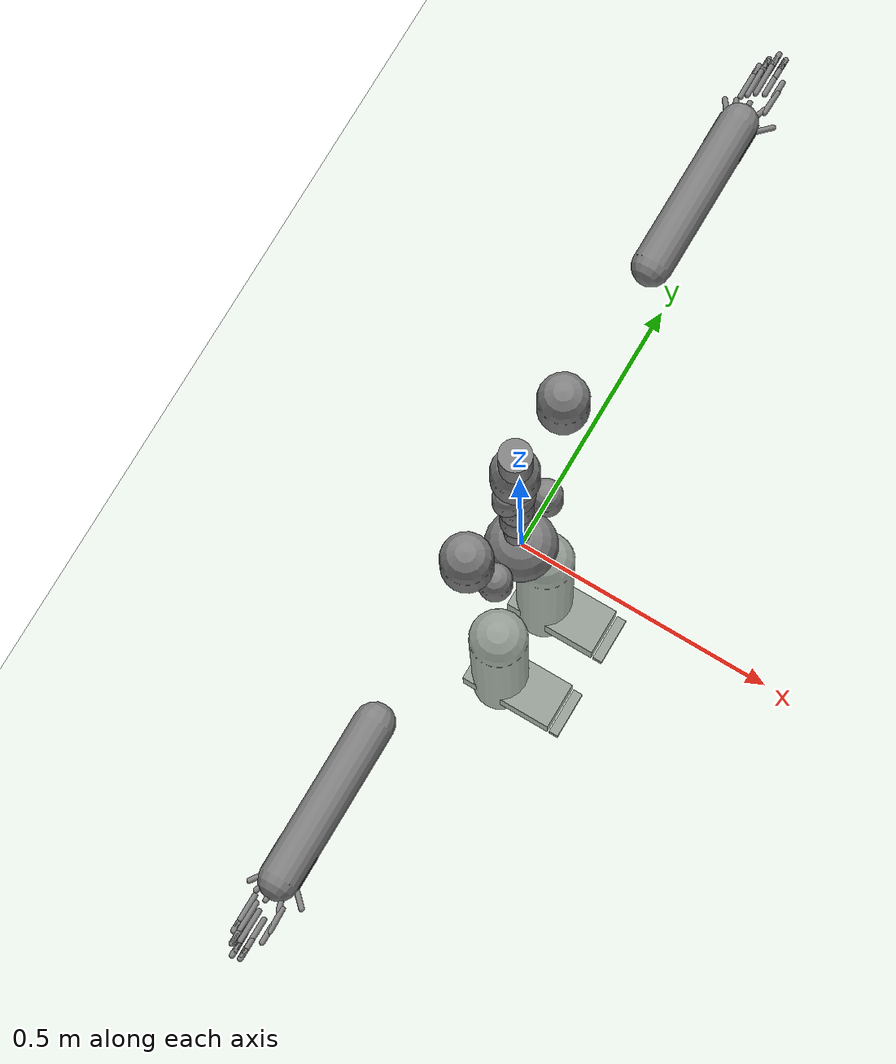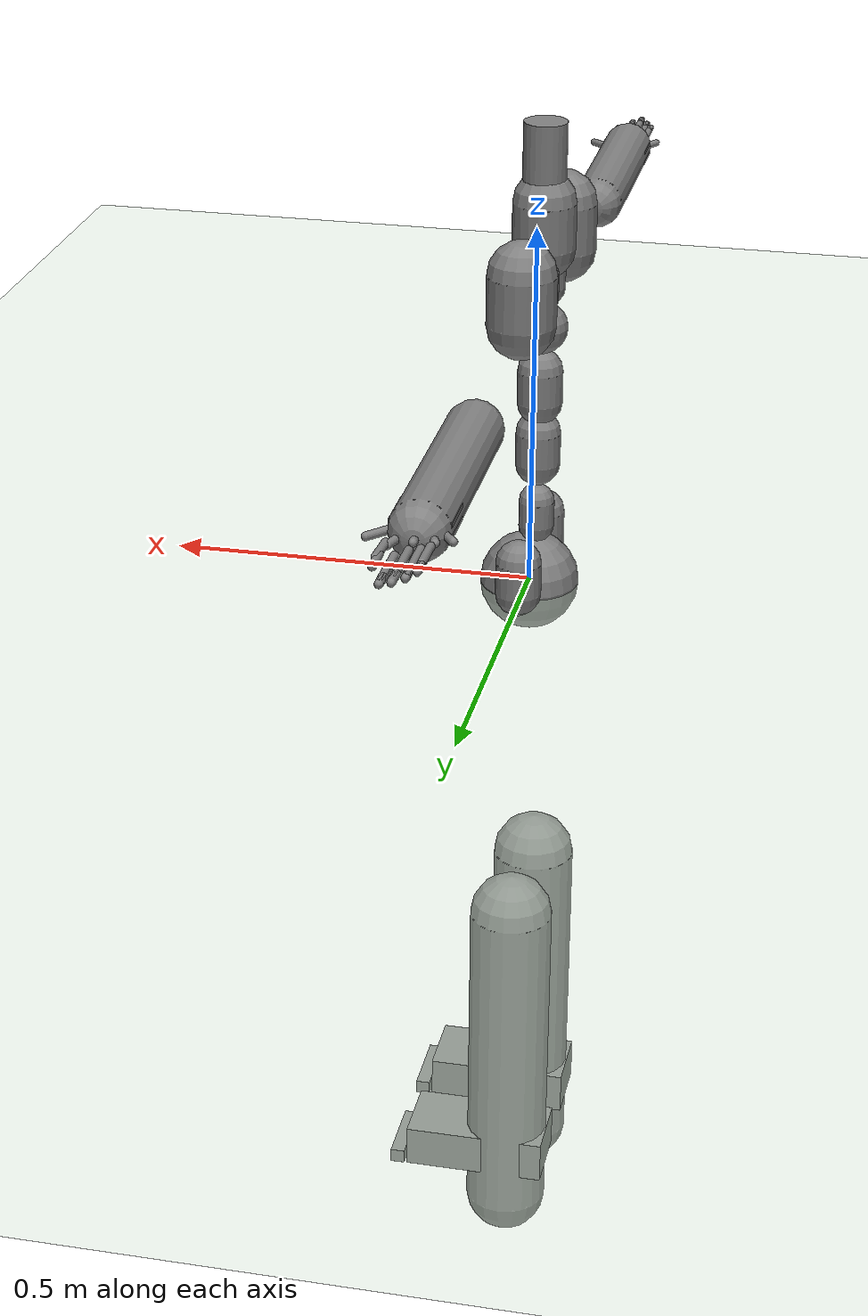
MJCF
<?xml version="1.0" ?>
<mujoco model="humanoid">
  <compiler coordinate="local"/>
  <statistic extent="2" center="0 0 1"/>
  <option timestep="0.00555"/>
  <default>
    <motor ctrlrange="-1 1" ctrllimited="true"/>
    <geom type="capsule" condim="1" friction="1.0 0.05 0.05" solimp=".9 .99 .003" solref=".015 1"/>
    <joint type="hinge" damping="0.1" stiffness="5" armature=".007" limited="true" solimplimit="0 .99 .01"/>
    <site size=".04" group="3"/>
  </default>
  <asset>
    <texture type="skybox" builtin="gradient" rgb1=".4 .5 .6" rgb2="0 0 0" width="100" height="100"/>
    <texture builtin="flat" height="1278" mark="cross" markrgb="1 1 1" name="texgeom" random="0.01" rgb1="0.8 0.6 0.4" rgb2="0.8 0.6 0.4" type="cube" width="127"/>
    <texture builtin="checker" height="100" name="texplane" rgb1="0 0 0" rgb2="0.8 0.8 0.8" type="2d" width="100"/>
    <material name="MatPlane" reflectance="0.5" shininess="1" specular="1" texrepeat="60 60" texture="texplane"/>
    <material name="geom" texture="texgeom" texuniform="true"/>
  </asset>
  <worldbody>
    <light cutoff="100" diffuse="1 1 1" dir="-0 0 -1.3" directional="true" exponent="1" pos="0 0 1.3" specular=".1 .1 .1"/>
    <geom conaffinity="1" condim="3" name="floor" pos="0 0 0" rgba="0.8 0.9 0.8 1" size="100 100 .2" type="plane" material="MatPlane"/>
    <body name="pHipOrigin" pos="0 0 0">
      <freejoint name="pHipOrigin"/>
      <geom type="sphere" contype="1" conaffinity="1" density="4629.6296296296305" size="0.06759" pos="0.0000 0.0000 -0.0000"/>
      <body name="jL5S1" pos="-0.00761586 0 0.06854256">
        <geom type="capsule" contype="1" conaffinity="1" density="1000" fromto="0 0 0.01379 0 0 0.04828" size="0.02414"/>
        <joint name="jL5S1_x" type="hinge" pos="0 0 0" axis="1 0 0" stiffness="500" damping="500" armature="0.02" range="-180.0000 180.0000"/>
        <joint name="jL5S1_y" type="hinge" pos="0 0 0" axis="0 1 0" stiffness="500" damping="500" armature="0.02" range="-180.0000 180.0000"/>
        <joint name="jL5S1_z" type="hinge" pos="0 0 0" axis="0 0 1" stiffness="500" damping="500" armature="0.02" range="-180.0000 180.0000"/>
        <body name="jL4L3" pos="0 0 0.08697770">
          <geom type="capsule" contype="1" conaffinity="1" density="1000" fromto="0 0 0.01740 0 0 0.06088" size="0.03044"/>
          <joint name="jL4L3_x" type="hinge" pos="0 0 0" axis="1 0 0" stiffness="500" damping="500" armature="0.02" range="-180.0000 180.0000"/>
          <joint name="jL4L3_y" type="hinge" pos="0 0 0" axis="0 1 0" stiffness="500" damping="500" armature="0.02" range="-180.0000 180.0000"/>
          <joint name="jL4L3_z" type="hinge" pos="0 0 0" axis="0 0 1" stiffness="500" damping="500" armature="0.02" range="-180.0000 180.0000"/>
          <body name="jL1T12" pos="-0.00067320 0 0.08725898">
            <geom type="capsule" contype="1" conaffinity="1" density="1000" fromto="0 0 0.01745 0 0 0.06108" size="0.03054"/>
            <joint name="jL1T12_x" type="hinge" pos="0 0 0" axis="1 0 0" stiffness="500" damping="500" armature="0.02" range="-180.0000 180.0000"/>
            <joint name="jL1T12_y" type="hinge" pos="0 0 0" axis="0 1 0" stiffness="500" damping="500" armature="0.02" range="-180.0000 180.0000"/>
            <joint name="jL1T12_z" type="hinge" pos="0 0 0" axis="0 0 1" stiffness="500" damping="500" armature="0.02" range="-180.0000 180.0000"/>
            <body name="jT9T8" pos="-0.00067448 0 0.08725406">
              <geom type="sphere" contype="1" conaffinity="1" density="1000" size="0.03490" pos="0.000 0.0000 0.034903"/>
              <joint name="jT9T8_x" type="hinge" pos="0 0 0" axis="1 0 0" stiffness="500" damping="500" armature="0.02" range="-180.0000 180.0000"/>
              <joint name="jT9T8_y" type="hinge" pos="0 0 0" axis="0 1 0" stiffness="500" damping="500" armature="0.02" range="-180.0000 180.0000"/>
              <joint name="jT9T8_z" type="hinge" pos="0 0 0" axis="0 0 1" stiffness="500" damping="500" armature="0.02" range="-180.0000 180.0000"/>
              <body name="jT1C7" pos="0 0 0.12036100">
                <geom type="capsule" contype="1" conaffinity="1" density="1000" fromto="0 0 0.02407 0 0 0.08425" size="0.04213"/>
                <joint name="jT1C7_x" type="hinge" pos="0 0 0" axis="1 0 0" stiffness="500" damping="500" armature="0.02" range="-180.0000 180.0000"/>
                <joint name="jT1C7_y" type="hinge" pos="0 0 0" axis="0 1 0" stiffness="500" damping="500" armature="0.02" range="-180.0000 180.0000"/>
                <joint name="jT1C7_z" type="hinge" pos="0 0 0" axis="0 0 1" stiffness="500" damping="500" armature="0.02" range="-180.0000 180.0000"/>
                <body name="jC1Head" pos="0.00112424 0 0.09529421">
                  <geom type="cylinder" contype="1" conaffinity="1" density="1000" fromto="0 0 0 0 0 0.09530" size="0.02859"/>
                  <joint name="jC1Head_x" type="hinge" pos="0 0 0" axis="1 0 0" stiffness="500" damping="500" armature="0.02" range="-180.0000 180.0000"/>
                  <joint name="jC1Head_y" type="hinge" pos="0 0 0" axis="0 1 0" stiffness="500" damping="500" armature="0.02" range="-180.0000 180.0000"/>
                  <joint name="jC1Head_z" type="hinge" pos="0 0 0" axis="0 0 1" stiffness="500" damping="500" armature="0.02" range="-180.0000 180.0000"/>
                </body>
              </body>
              <body name="jRightT4Shoulder" pos="0 -0.02751327 0.06708339">
                <geom type="capsule" contype="1" conaffinity="1" density="1000" fromto="0 0 0.01450 0 0 0.05075" size="0.02538"/>
                <joint name="jRightT4Shoulder_x" type="hinge" pos="0 0 0" axis="1 0 0" stiffness="500" damping="500" armature="0.02" range="-180.0000 180.0000"/>
                <joint name="jRightT4Shoulder_y" type="hinge" pos="0 0 0" axis="0 1 0" stiffness="500" damping="500" armature="0.02" range="-180.0000 180.0000"/>
                <joint name="jRightT4Shoulder_z" type="hinge" pos="0 0 0" axis="0 0 1" stiffness="500" damping="500" armature="0.02" range="-180.0000 180.0000"/>
                <body name="jRightShoulder" pos="0 -0.12883951 0">
                  <geom type="capsule" contype="1" conaffinity="1" density="1000" fromto="0 0 0.02577 0 0 0.09019" size="0.04509"/>
                  <joint name="jRightShoulder_x" type="hinge" pos="0 0 0" axis="1 0 0" stiffness="500" damping="500" armature="0.02" range="-180.0000 180.0000"/>
                  <joint name="jRightShoulder_y" type="hinge" pos="0 0 0" axis="0 1 0" stiffness="500" damping="500" armature="0.02" range="-180.0000 180.0000"/>
                  <joint name="jRightShoulder_z" type="hinge" pos="0 0 0" axis="0 0 1" stiffness="500" damping="500" armature="0.02" range="-180.0000 180.0000"/>
                  <body name="jRightElbow" pos="0 -0.29751137 0">
                    <geom type="capsule" contype="1" conaffinity="1" density="1000" fromto="0 0 0 0.00000000 -0.29751137 0.00000000" size="0.03570"/>
                    <joint name="jRightElbow_x" type="hinge" pos="0 0 0" axis="1 0 0" stiffness="500" damping="500" armature="0.02" range="-180.0000 180.0000"/>
                    <joint name="jRightElbow_y" type="hinge" pos="0 0 0" axis="0 1 0" stiffness="500" damping="500" armature="0.02" range="-180.0000 180.0000"/>
                    <joint name="jRightElbow_z" type="hinge" pos="0 0 0" axis="0 0 1" stiffness="500" damping="500" armature="0.02" range="-180.0000 180.0000"/>
                    <body name="jRightWrist" pos="0.00010711 -0.26612908 0">
                      <geom density="1000" type="box" pos="0 0 0" size="0.035 0.03 0.01" quat="1.0000 0.0000 0.0000 0.0000"/>
                      <joint name="jRightWrist_x" type="hinge" pos="0 0 0" axis="1 0 0" stiffness="500" damping="500" armature="0.02" range="-180.0000 180.0000"/>
                      <joint name="jRightWrist_y" type="hinge" pos="0 0 0" axis="0 1 0" stiffness="500" damping="500" armature="0.02" range="-180.0000 180.0000"/>
                      <joint name="jRightWrist_z" type="hinge" pos="0 0 0" axis="0 0 1" stiffness="500" damping="500" armature="0.02" range="-180.0000 180.0000"/>
                      <body name="jRightFirstCMC" pos="0.02770144 -0.02655338 -0.00125449">
                        <geom type="capsule" contype="1" conaffinity="1" density="1000" fromto="0 0 0 0.02770144 -0.02655338 -0.00125449" size="0.005"/>
                        <joint name="jRightFirstCMC_x" type="hinge" pos="0 0 0" axis="1 0 0" stiffness="500" damping="500" armature="0.02" range="-180.0000 180.0000"/>
                        <joint name="jRightFirstCMC_y" type="hinge" pos="0 0 0" axis="0 1 0" stiffness="500" damping="500" armature="0.02" range="-180.0000 180.0000"/>
                        <joint name="jRightFirstCMC_z" type="hinge" pos="0 0 0" axis="0 0 1" stiffness="500" damping="500" armature="0.02" range="-180.0000 180.0000"/>
                        <body name="jRightFirstMCP" pos="0.00149985 -0.04232468 0.00089432">
                          <geom type="capsule" contype="1" conaffinity="1" density="1000" fromto="0 0 0 0.00149985 -0.04232468 0.00089432" size="0.005"/>
                          <joint name="jRightFirstMCP_x" type="hinge" pos="0 0 0" axis="1 0 0" stiffness="500" damping="500" armature="0.02" range="-180.0000 180.0000"/>
                          <joint name="jRightFirstMCP_y" type="hinge" pos="0 0 0" axis="0 1 0" stiffness="500" damping="500" armature="0.02" range="-180.0000 180.0000"/>
                          <joint name="jRightFirstMCP_z" type="hinge" pos="0 0 0" axis="0 0 1" stiffness="500" damping="500" armature="0.02" range="-180.0000 180.0000"/>
                          <body name="jRightIP" pos="0 -0.03137622 0">
                            <geom type="capsule" contype="1" conaffinity="1" density="1000" fromto="0 0 0 0.00000000 -0.03137622 0.00000000" size="0.005"/>
                            <joint name="jRightIP_x" type="hinge" pos="0 0 0" axis="1 0 0" stiffness="500" damping="500" armature="0.02" range="-180.0000 180.0000"/>
                            <joint name="jRightIP_y" type="hinge" pos="0 0 0" axis="0 1 0" stiffness="500" damping="500" armature="0.02" range="-180.0000 180.0000"/>
                            <joint name="jRightIP_z" type="hinge" pos="0 0 0" axis="0 0 1" stiffness="500" damping="500" armature="0.02" range="-180.0000 180.0000"/>
                          </body>
                        </body>
                      </body>
                      <body name="jRightSecondCMC" pos="0.01270858 -0.03713045 -0.00064765">
                        <geom type="capsule" contype="1" conaffinity="1" density="1000" fromto="0 0 0 0.01270858 -0.03713045 -0.00064765" size="0.005"/>
                        <joint name="jRightSecondCMC_x" type="hinge" pos="0 0 0" axis="1 0 0" stiffness="500" damping="500" armature="0.02" range="-180.0000 180.0000"/>
                        <joint name="jRightSecondCMC_y" type="hinge" pos="0 0 0" axis="0 1 0" stiffness="500" damping="500" armature="0.02" range="-180.0000 180.0000"/>
                        <joint name="jRightSecondCMC_z" type="hinge" pos="0 0 0" axis="0 0 1" stiffness="500" damping="500" armature="0.02" range="-180.0000 180.0000"/>
                        <body name="jRightSecondMCP" pos="-0.00038842 -0.06194937 -0.00064262">
                          <geom type="capsule" contype="1" conaffinity="1" density="1000" fromto="0 0 0 -0.00038842 -0.06194937 -0.00064262" size="0.005"/>
                          <joint name="jRightSecondMCP_x" type="hinge" pos="0 0 0" axis="1 0 0" stiffness="500" damping="500" armature="0.02" range="-180.0000 180.0000"/>
                          <joint name="jRightSecondMCP_y" type="hinge" pos="0 0 0" axis="0 1 0" stiffness="500" damping="500" armature="0.02" range="-180.0000 180.0000"/>
                          <joint name="jRightSecondMCP_z" type="hinge" pos="0 0 0" axis="0 0 1" stiffness="500" damping="500" armature="0.02" range="-180.0000 180.0000"/>
                          <body name="jRightSecondPIP" pos="0 -0.03626630 0">
                            <geom type="capsule" contype="1" conaffinity="1" density="1000" fromto="0 0 0 0.00000000 -0.03626630 0.00000000" size="0.005"/>
                            <joint name="jRightSecondPIP_x" type="hinge" pos="0 0 0" axis="1 0 0" stiffness="500" damping="500" armature="0.02" range="-180.0000 180.0000"/>
                            <joint name="jRightSecondPIP_y" type="hinge" pos="0 0 0" axis="0 1 0" stiffness="500" damping="500" armature="0.02" range="-180.0000 180.0000"/>
                            <joint name="jRightSecondPIP_z" type="hinge" pos="0 0 0" axis="0 0 1" stiffness="500" damping="500" armature="0.02" range="-180.0000 180.0000"/>
                            <body name="jRightSecondDIP" pos="0 -0.01733303 0">
                              <geom type="capsule" contype="1" conaffinity="1" density="1000" fromto="0 0 0 0.00000000 -0.01733303 0.00000000" size="0.005"/>
                              <joint name="jRightSecondDIP_x" type="hinge" pos="0 0 0" axis="1 0 0" stiffness="500" damping="500" armature="0.02" range="-180.0000 180.0000"/>
                              <joint name="jRightSecondDIP_y" type="hinge" pos="0 0 0" axis="0 1 0" stiffness="500" damping="500" armature="0.02" range="-180.0000 180.0000"/>
                              <joint name="jRightSecondDIP_z" type="hinge" pos="0 0 0" axis="0 0 1" stiffness="500" damping="500" armature="0.02" range="-180.0000 180.0000"/>
                            </body>
                          </body>
                        </body>
                      </body>
                      <body name="jRightThirdCMC" pos="-0.00065555 -0.03545052 0.00149039">
                        <geom type="capsule" contype="1" conaffinity="1" density="1000" fromto="0 0 0 -0.00065555 -0.03545052 0.00149039" size="0.005"/>
                        <joint name="jRightThirdCMC_x" type="hinge" pos="0 0 0" axis="1 0 0" stiffness="500" damping="500" armature="0.02" range="-180.0000 180.0000"/>
                        <joint name="jRightThirdCMC_y" type="hinge" pos="0 0 0" axis="0 1 0" stiffness="500" damping="500" armature="0.02" range="-180.0000 180.0000"/>
                        <joint name="jRightThirdCMC_z" type="hinge" pos="0 0 0" axis="0 0 1" stiffness="500" damping="500" armature="0.02" range="-180.0000 180.0000"/>
                        <body name="jRightThirdMCP" pos="-0.00067545 -0.05596149 0.00152250">
                          <geom type="capsule" contype="1" conaffinity="1" density="1000" fromto="0 0 0 -0.00067545 -0.05596149 0.00152250" size="0.005"/>
                          <joint name="jRightThirdMCP_x" type="hinge" pos="0 0 0" axis="1 0 0" stiffness="500" damping="500" armature="0.02" range="-180.0000 180.0000"/>
                          <joint name="jRightThirdMCP_y" type="hinge" pos="0 0 0" axis="0 1 0" stiffness="500" damping="500" armature="0.02" range="-180.0000 180.0000"/>
                          <joint name="jRightThirdMCP_z" type="hinge" pos="0 0 0" axis="0 0 1" stiffness="500" damping="500" armature="0.02" range="-180.0000 180.0000"/>
                          <body name="jRightThirdPIP" pos="0 -0.04126192 0">
                            <geom type="capsule" contype="1" conaffinity="1" density="1000" fromto="0 0 0 0.00000000 -0.04126192 0.00000000" size="0.005"/>
                            <joint name="jRightThirdPIP_x" type="hinge" pos="0 0 0" axis="1 0 0" stiffness="500" damping="500" armature="0.02" range="-180.0000 180.0000"/>
                            <joint name="jRightThirdPIP_y" type="hinge" pos="0 0 0" axis="0 1 0" stiffness="500" damping="500" armature="0.02" range="-180.0000 180.0000"/>
                            <joint name="jRightThirdPIP_z" type="hinge" pos="0 0 0" axis="0 0 1" stiffness="500" damping="500" armature="0.02" range="-180.0000 180.0000"/>
                            <body name="jRightThirdDIP" pos="0 -0.01737270 0">
                              <geom type="capsule" contype="1" conaffinity="1" density="1000" fromto="0 0 0 0.00000000 -0.01737270 0.00000000" size="0.005"/>
                              <joint name="jRightThirdDIP_x" type="hinge" pos="0 0 0" axis="1 0 0" stiffness="500" damping="500" armature="0.02" range="-180.0000 180.0000"/>
                              <joint name="jRightThirdDIP_y" type="hinge" pos="0 0 0" axis="0 1 0" stiffness="500" damping="500" armature="0.02" range="-180.0000 180.0000"/>
                              <joint name="jRightThirdDIP_z" type="hinge" pos="0 0 0" axis="0 0 1" stiffness="500" damping="500" armature="0.02" range="-180.0000 180.0000"/>
                            </body>
                          </body>
                        </body>
                      </body>
                      <body name="jRightFourthCMC" pos="-0.01168022 -0.03253136 0.00076574">
                        <geom type="capsule" contype="1" conaffinity="1" density="1000" fromto="0 0 0 -0.01168022 -0.03253136 0.00076574" size="0.005"/>
                        <joint name="jRightFourthCMC_x" type="hinge" pos="0 0 0" axis="1 0 0" stiffness="500" damping="500" armature="0.02" range="-180.0000 180.0000"/>
                        <joint name="jRightFourthCMC_y" type="hinge" pos="0 0 0" axis="0 1 0" stiffness="500" damping="500" armature="0.02" range="-180.0000 180.0000"/>
                        <joint name="jRightFourthCMC_z" type="hinge" pos="0 0 0" axis="0 0 1" stiffness="500" damping="500" armature="0.02" range="-180.0000 180.0000"/>
                        <body name="jRightFourthMCP" pos="-0.00036386 -0.04986992 0.00078350">
                          <geom type="capsule" contype="1" conaffinity="1" density="1000" fromto="0 0 0 -0.00036386 -0.04986992 0.00078350" size="0.005"/>
                          <joint name="jRightFourthMCP_x" type="hinge" pos="0 0 0" axis="1 0 0" stiffness="500" damping="500" armature="0.02" range="-180.0000 180.0000"/>
                          <joint name="jRightFourthMCP_y" type="hinge" pos="0 0 0" axis="0 1 0" stiffness="500" damping="500" armature="0.02" range="-180.0000 180.0000"/>
                          <joint name="jRightFourthMCP_z" type="hinge" pos="0 0 0" axis="0 0 1" stiffness="500" damping="500" armature="0.02" range="-180.0000 180.0000"/>
                          <body name="jRightFourthPIP" pos="0 -0.03737780 0">
                            <geom type="capsule" contype="1" conaffinity="1" density="1000" fromto="0 0 0 0.00000000 -0.03737780 0.00000000" size="0.005"/>
                            <joint name="jRightFourthPIP_x" type="hinge" pos="0 0 0" axis="1 0 0" stiffness="500" damping="500" armature="0.02" range="-180.0000 180.0000"/>
                            <joint name="jRightFourthPIP_y" type="hinge" pos="0 0 0" axis="0 1 0" stiffness="500" damping="500" armature="0.02" range="-180.0000 180.0000"/>
                            <joint name="jRightFourthPIP_z" type="hinge" pos="0 0 0" axis="0 0 1" stiffness="500" damping="500" armature="0.02" range="-180.0000 180.0000"/>
                            <body name="jRightFourthDIP" pos="0 -0.01896561 0">
                              <geom type="capsule" contype="1" conaffinity="1" density="1000" fromto="0 0 0 0.00000000 -0.01896561 0.00000000" size="0.005"/>
                              <joint name="jRightFourthDIP_x" type="hinge" pos="0 0 0" axis="1 0 0" stiffness="500" damping="500" armature="0.02" range="-180.0000 180.0000"/>
                              <joint name="jRightFourthDIP_y" type="hinge" pos="0 0 0" axis="0 1 0" stiffness="500" damping="500" armature="0.02" range="-180.0000 180.0000"/>
                              <joint name="jRightFourthDIP_z" type="hinge" pos="0 0 0" axis="0 0 1" stiffness="500" damping="500" armature="0.02" range="-180.0000 180.0000"/>
                            </body>
                          </body>
                        </body>
                      </body>
                      <body name="jRightFifthCMC" pos="-0.02038501 -0.02840419 0.00056032">
                        <geom type="capsule" contype="1" conaffinity="1" density="1000" fromto="0 0 0 -0.02038501 -0.02840419 0.00056032" size="0.005"/>
                        <joint name="jRightFifthCMC_x" type="hinge" pos="0 0 0" axis="1 0 0" stiffness="500" damping="500" armature="0.02" range="-180.0000 180.0000"/>
                        <joint name="jRightFifthCMC_y" type="hinge" pos="0 0 0" axis="0 1 0" stiffness="500" damping="500" armature="0.02" range="-180.0000 180.0000"/>
                        <joint name="jRightFifthCMC_z" type="hinge" pos="0 0 0" axis="0 0 1" stiffness="500" damping="500" armature="0.02" range="-180.0000 180.0000"/>
                        <body name="jRightFifthMCP" pos="-0.00000665 -0.04500107 0.00061927">
                          <geom type="capsule" contype="1" conaffinity="1" density="1000" fromto="0 0 0 -0.00000665 -0.04500107 0.00061927" size="0.005"/>
                          <joint name="jRightFifthMCP_x" type="hinge" pos="0 0 0" axis="1 0 0" stiffness="500" damping="500" armature="0.02" range="-180.0000 180.0000"/>
                          <joint name="jRightFifthMCP_y" type="hinge" pos="0 0 0" axis="0 1 0" stiffness="500" damping="500" armature="0.02" range="-180.0000 180.0000"/>
                          <joint name="jRightFifthMCP_z" type="hinge" pos="0 0 0" axis="0 0 1" stiffness="500" damping="500" armature="0.02" range="-180.0000 180.0000"/>
                          <body name="jRightFifthPIP" pos="0 -0.03279999 0">
                            <geom type="capsule" contype="1" conaffinity="1" density="1000" fromto="0 0 0 0.00000000 -0.03279999 0.00000000" size="0.005"/>
                            <joint name="jRightFifthPIP_x" type="hinge" pos="0 0 0" axis="1 0 0" stiffness="500" damping="500" armature="0.02" range="-180.0000 180.0000"/>
                            <joint name="jRightFifthPIP_y" type="hinge" pos="0 0 0" axis="0 1 0" stiffness="500" damping="500" armature="0.02" range="-180.0000 180.0000"/>
                            <joint name="jRightFifthPIP_z" type="hinge" pos="0 0 0" axis="0 0 1" stiffness="500" damping="500" armature="0.02" range="-180.0000 180.0000"/>
                            <body name="jRightFifthDIP" pos="0 -0.01316215 0">
                              <geom type="capsule" contype="1" conaffinity="1" density="1000" fromto="0 0 0 0.00000000 -0.01316215 0.00000000" size="0.005"/>
                              <joint name="jRightFifthDIP_x" type="hinge" pos="0 0 0" axis="1 0 0" stiffness="500" damping="500" armature="0.02" range="-180.0000 180.0000"/>
                              <joint name="jRightFifthDIP_y" type="hinge" pos="0 0 0" axis="0 1 0" stiffness="500" damping="500" armature="0.02" range="-180.0000 180.0000"/>
                              <joint name="jRightFifthDIP_z" type="hinge" pos="0 0 0" axis="0 0 1" stiffness="500" damping="500" armature="0.02" range="-180.0000 180.0000"/>
                            </body>
                          </body>
                        </body>
                      </body>
                    </body>
                  </body>
                </body>
              </body>
              <body name="jLeftT4Shoulder" pos="0 0.02759530 0.06728339">
                <geom type="capsule" contype="1" conaffinity="1" density="1000" fromto="0 0 0.01454 0 0 0.05091" size="0.02545"/>
                <joint name="jLeftT4Shoulder_x" type="hinge" pos="0 0 0" axis="1 0 0" stiffness="500" damping="500" armature="0.02" range="-180.0000 180.0000"/>
                <joint name="jLeftT4Shoulder_y" type="hinge" pos="0 0 0" axis="0 1 0" stiffness="500" damping="500" armature="0.02" range="-180.0000 180.0000"/>
                <joint name="jLeftT4Shoulder_z" type="hinge" pos="0 0 0" axis="0 0 1" stiffness="500" damping="500" armature="0.02" range="-180.0000 180.0000"/>
                <body name="jLeftShoulder" pos="0 0.12877463 0">
                  <geom type="capsule" contype="1" conaffinity="1" density="1000" fromto="0 0 0.02575 0 0 0.09014" size="0.04507"/>
                  <joint name="jLeftShoulder_x" type="hinge" pos="0 0 0" axis="1 0 0" stiffness="500" damping="500" armature="0.02" range="-180.0000 180.0000"/>
                  <joint name="jLeftShoulder_y" type="hinge" pos="0 0 0" axis="0 1 0" stiffness="500" damping="500" armature="0.02" range="-180.0000 180.0000"/>
                  <joint name="jLeftShoulder_z" type="hinge" pos="0 0 0" axis="0 0 1" stiffness="500" damping="500" armature="0.02" range="-180.0000 180.0000"/>
                  <body name="jLeftElbow" pos="0 0.29680666 0">
                    <geom type="capsule" contype="1" conaffinity="1" density="1000" fromto="0 0 0 0.00000000 0.29680666 0.00000000" size="0.03562"/>
                    <joint name="jLeftElbow_x" type="hinge" pos="0 0 0" axis="1 0 0" stiffness="500" damping="500" armature="0.02" range="-180.0000 180.0000"/>
                    <joint name="jLeftElbow_y" type="hinge" pos="0 0 0" axis="0 1 0" stiffness="500" damping="500" armature="0.02" range="-180.0000 180.0000"/>
                    <joint name="jLeftElbow_z" type="hinge" pos="0 0 0" axis="0 0 1" stiffness="500" damping="500" armature="0.02" range="-180.0000 180.0000"/>
                    <body name="jLeftWrist" pos="0.00010741 0.26686138 0">
                      <geom density="1000" type="box" pos="0 0 0" size="0.035 0.03 0.01" quat="1.0000 0.0000 0.0000 0.0000"/>
                      <joint name="jLeftWrist_x" type="hinge" pos="0 0 0" axis="1 0 0" stiffness="500" damping="500" armature="0.02" range="-180.0000 180.0000"/>
                      <joint name="jLeftWrist_y" type="hinge" pos="0 0 0" axis="0 1 0" stiffness="500" damping="500" armature="0.02" range="-180.0000 180.0000"/>
                      <joint name="jLeftWrist_z" type="hinge" pos="0 0 0" axis="0 0 1" stiffness="500" damping="500" armature="0.02" range="-180.0000 180.0000"/>
                      <body name="jLeftFirstCMC" pos="0.02711318 0.02717721 -0.00121350">
                        <geom type="capsule" contype="1" conaffinity="1" density="1000" fromto="0 0 0 0.02711318 0.02717721 -0.00121350" size="0.005"/>
                        <joint name="jLeftFirstCMC_x" type="hinge" pos="0 0 0" axis="1 0 0" stiffness="500" damping="500" armature="0.02" range="-180.0000 180.0000"/>
                        <joint name="jLeftFirstCMC_y" type="hinge" pos="0 0 0" axis="0 1 0" stiffness="500" damping="500" armature="0.02" range="-180.0000 180.0000"/>
                        <joint name="jLeftFirstCMC_z" type="hinge" pos="0 0 0" axis="0 0 1" stiffness="500" damping="500" armature="0.02" range="-180.0000 180.0000"/>
                        <body name="jLeftFirstMCP" pos="0.00148540 0.04232373 0.00087155">
                          <geom type="capsule" contype="1" conaffinity="1" density="1000" fromto="0 0 0 0.00148540 0.04232373 0.00087155" size="0.005"/>
                          <joint name="jLeftFirstMCP_x" type="hinge" pos="0 0 0" axis="1 0 0" stiffness="500" damping="500" armature="0.02" range="-180.0000 180.0000"/>
                          <joint name="jLeftFirstMCP_y" type="hinge" pos="0 0 0" axis="0 1 0" stiffness="500" damping="500" armature="0.02" range="-180.0000 180.0000"/>
                          <joint name="jLeftFirstMCP_z" type="hinge" pos="0 0 0" axis="0 0 1" stiffness="500" damping="500" armature="0.02" range="-180.0000 180.0000"/>
                          <body name="jLeftIP" pos="0 0.03137622 0">
                            <geom type="capsule" contype="1" conaffinity="1" density="1000" fromto="0 0 0 0.00000000 0.03137622 0.00000000" size="0.005"/>
                            <joint name="jLeftIP_x" type="hinge" pos="0 0 0" axis="1 0 0" stiffness="500" damping="500" armature="0.02" range="-180.0000 180.0000"/>
                            <joint name="jLeftIP_y" type="hinge" pos="0 0 0" axis="0 1 0" stiffness="500" damping="500" armature="0.02" range="-180.0000 180.0000"/>
                            <joint name="jLeftIP_z" type="hinge" pos="0 0 0" axis="0 0 1" stiffness="500" damping="500" armature="0.02" range="-180.0000 180.0000"/>
                          </body>
                        </body>
                      </body>
                      <body name="jLeftSecondCMC" pos="0.01285496 0.03706213 -0.00065299">
                        <geom type="capsule" contype="1" conaffinity="1" density="1000" fromto="0 0 0 0.01285496 0.03706213 -0.00065299" size="0.005"/>
                        <joint name="jLeftSecondCMC_x" type="hinge" pos="0 0 0" axis="1 0 0" stiffness="500" damping="500" armature="0.02" range="-180.0000 180.0000"/>
                        <joint name="jLeftSecondCMC_y" type="hinge" pos="0 0 0" axis="0 1 0" stiffness="500" damping="500" armature="0.02" range="-180.0000 180.0000"/>
                        <joint name="jLeftSecondCMC_z" type="hinge" pos="0 0 0" axis="0 0 1" stiffness="500" damping="500" armature="0.02" range="-180.0000 180.0000"/>
                        <body name="jLeftSecondMCP" pos="-0.00033867 0.06195065 -0.00065056">
                          <geom type="capsule" contype="1" conaffinity="1" density="1000" fromto="0 0 0 -0.00033867 0.06195065 -0.00065056" size="0.005"/>
                          <joint name="jLeftSecondMCP_x" type="hinge" pos="0 0 0" axis="1 0 0" stiffness="500" damping="500" armature="0.02" range="-180.0000 180.0000"/>
                          <joint name="jLeftSecondMCP_y" type="hinge" pos="0 0 0" axis="0 1 0" stiffness="500" damping="500" armature="0.02" range="-180.0000 180.0000"/>
                          <joint name="jLeftSecondMCP_z" type="hinge" pos="0 0 0" axis="0 0 1" stiffness="500" damping="500" armature="0.02" range="-180.0000 180.0000"/>
                          <body name="jLeftSecondPIP" pos="0 0.03626630 0">
                            <geom type="capsule" contype="1" conaffinity="1" density="1000" fromto="0 0 0 0.00000000 0.03626630 0.00000000" size="0.005"/>
                            <joint name="jLeftSecondPIP_x" type="hinge" pos="0 0 0" axis="1 0 0" stiffness="500" damping="500" armature="0.02" range="-180.0000 180.0000"/>
                            <joint name="jLeftSecondPIP_y" type="hinge" pos="0 0 0" axis="0 1 0" stiffness="500" damping="500" armature="0.02" range="-180.0000 180.0000"/>
                            <joint name="jLeftSecondPIP_z" type="hinge" pos="0 0 0" axis="0 0 1" stiffness="500" damping="500" armature="0.02" range="-180.0000 180.0000"/>
                            <body name="jLeftSecondDIP" pos="0 0.01733303 0">
                              <geom type="capsule" contype="1" conaffinity="1" density="1000" fromto="0 0 0 0.00000000 0.01733303 0.00000000" size="0.005"/>
                              <joint name="jLeftSecondDIP_x" type="hinge" pos="0 0 0" axis="1 0 0" stiffness="500" damping="500" armature="0.02" range="-180.0000 180.0000"/>
                              <joint name="jLeftSecondDIP_y" type="hinge" pos="0 0 0" axis="0 1 0" stiffness="500" damping="500" armature="0.02" range="-180.0000 180.0000"/>
                              <joint name="jLeftSecondDIP_z" type="hinge" pos="0 0 0" axis="0 0 1" stiffness="500" damping="500" armature="0.02" range="-180.0000 180.0000"/>
                            </body>
                          </body>
                        </body>
                      </body>
                      <body name="jLeftThirdCMC" pos="-0.00065940 0.03545371 0.00144071">
                        <geom type="capsule" contype="1" conaffinity="1" density="1000" fromto="0 0 0 -0.00065940 0.03545371 0.00144071" size="0.005"/>
                        <joint name="jLeftThirdCMC_x" type="hinge" pos="0 0 0" axis="1 0 0" stiffness="500" damping="500" armature="0.02" range="-180.0000 180.0000"/>
                        <joint name="jLeftThirdCMC_y" type="hinge" pos="0 0 0" axis="0 1 0" stiffness="500" damping="500" armature="0.02" range="-180.0000 180.0000"/>
                        <joint name="jLeftThirdCMC_z" type="hinge" pos="0 0 0" axis="0 0 1" stiffness="500" damping="500" armature="0.02" range="-180.0000 180.0000"/>
                        <body name="jLeftThirdMCP" pos="-0.00068091 0.05596258 0.00149189">
                          <geom type="capsule" contype="1" conaffinity="1" density="1000" fromto="0 0 0 -0.00068091 0.05596258 0.00149189" size="0.005"/>
                          <joint name="jLeftThirdMCP_x" type="hinge" pos="0 0 0" axis="1 0 0" stiffness="500" damping="500" armature="0.02" range="-180.0000 180.0000"/>
                          <joint name="jLeftThirdMCP_y" type="hinge" pos="0 0 0" axis="0 1 0" stiffness="500" damping="500" armature="0.02" range="-180.0000 180.0000"/>
                          <joint name="jLeftThirdMCP_z" type="hinge" pos="0 0 0" axis="0 0 1" stiffness="500" damping="500" armature="0.02" range="-180.0000 180.0000"/>
                          <body name="jLeftThirdPIP" pos="0 0.04126192 0">
                            <geom type="capsule" contype="1" conaffinity="1" density="1000" fromto="0 0 0 0.00000000 0.04126192 0.00000000" size="0.005"/>
                            <joint name="jLeftThirdPIP_x" type="hinge" pos="0 0 0" axis="1 0 0" stiffness="500" damping="500" armature="0.02" range="-180.0000 180.0000"/>
                            <joint name="jLeftThirdPIP_y" type="hinge" pos="0 0 0" axis="0 1 0" stiffness="500" damping="500" armature="0.02" range="-180.0000 180.0000"/>
                            <joint name="jLeftThirdPIP_z" type="hinge" pos="0 0 0" axis="0 0 1" stiffness="500" damping="500" armature="0.02" range="-180.0000 180.0000"/>
                            <body name="jLeftThirdDIP" pos="0 0.01737270 0">
                              <geom type="capsule" contype="1" conaffinity="1" density="1000" fromto="0 0 0 0.00000000 0.01737270 0.00000000" size="0.005"/>
                              <joint name="jLeftThirdDIP_x" type="hinge" pos="0 0 0" axis="1 0 0" stiffness="500" damping="500" armature="0.02" range="-180.0000 180.0000"/>
                              <joint name="jLeftThirdDIP_y" type="hinge" pos="0 0 0" axis="0 1 0" stiffness="500" damping="500" armature="0.02" range="-180.0000 180.0000"/>
                              <joint name="jLeftThirdDIP_z" type="hinge" pos="0 0 0" axis="0 0 1" stiffness="500" damping="500" armature="0.02" range="-180.0000 180.0000"/>
                            </body>
                          </body>
                        </body>
                      </body>
                      <body name="jLeftFourthCMC" pos="-0.01210881 0.03236496 0.00081742">
                        <geom type="capsule" contype="1" conaffinity="1" density="1000" fromto="0 0 0 -0.01210881 0.03236496 0.00081742" size="0.005"/>
                        <joint name="jLeftFourthCMC_x" type="hinge" pos="0 0 0" axis="1 0 0" stiffness="500" damping="500" armature="0.02" range="-180.0000 180.0000"/>
                        <joint name="jLeftFourthCMC_y" type="hinge" pos="0 0 0" axis="0 1 0" stiffness="500" damping="500" armature="0.02" range="-180.0000 180.0000"/>
                        <joint name="jLeftFourthCMC_z" type="hinge" pos="0 0 0" axis="0 0 1" stiffness="500" damping="500" armature="0.02" range="-180.0000 180.0000"/>
                        <body name="jLeftFourthMCP" pos="-0.00039129 0.04986707 0.00082864">
                          <geom type="capsule" contype="1" conaffinity="1" density="1000" fromto="0 0 0 -0.00039129 0.04986707 0.00082864" size="0.005"/>
                          <joint name="jLeftFourthMCP_x" type="hinge" pos="0 0 0" axis="1 0 0" stiffness="500" damping="500" armature="0.02" range="-180.0000 180.0000"/>
                          <joint name="jLeftFourthMCP_y" type="hinge" pos="0 0 0" axis="0 1 0" stiffness="500" damping="500" armature="0.02" range="-180.0000 180.0000"/>
                          <joint name="jLeftFourthMCP_z" type="hinge" pos="0 0 0" axis="0 0 1" stiffness="500" damping="500" armature="0.02" range="-180.0000 180.0000"/>
                          <body name="jLeftFourthPIP" pos="0 0.03737780 0">
                            <geom type="capsule" contype="1" conaffinity="1" density="1000" fromto="0 0 0 0.00000000 0.03737780 0.00000000" size="0.005"/>
                            <joint name="jLeftFourthPIP_x" type="hinge" pos="0 0 0" axis="1 0 0" stiffness="500" damping="500" armature="0.02" range="-180.0000 180.0000"/>
                            <joint name="jLeftFourthPIP_y" type="hinge" pos="0 0 0" axis="0 1 0" stiffness="500" damping="500" armature="0.02" range="-180.0000 180.0000"/>
                            <joint name="jLeftFourthPIP_z" type="hinge" pos="0 0 0" axis="0 0 1" stiffness="500" damping="500" armature="0.02" range="-180.0000 180.0000"/>
                            <body name="jLeftFourthDIP" pos="0 0.01896561 0">
                              <geom type="capsule" contype="1" conaffinity="1" density="1000" fromto="0 0 0 0.00000000 0.01896561 0.00000000" size="0.005"/>
                              <joint name="jLeftFourthDIP_x" type="hinge" pos="0 0 0" axis="1 0 0" stiffness="500" damping="500" armature="0.02" range="-180.0000 180.0000"/>
                              <joint name="jLeftFourthDIP_y" type="hinge" pos="0 0 0" axis="0 1 0" stiffness="500" damping="500" armature="0.02" range="-180.0000 180.0000"/>
                              <joint name="jLeftFourthDIP_z" type="hinge" pos="0 0 0" axis="0 0 1" stiffness="500" damping="500" armature="0.02" range="-180.0000 180.0000"/>
                            </body>
                          </body>
                        </body>
                      </body>
                      <body name="jLeftFifthCMC" pos="-0.02100255 0.02795514 0.00056933">
                        <geom type="capsule" contype="1" conaffinity="1" density="1000" fromto="0 0 0 -0.02100255 0.02795514 0.00056933" size="0.005"/>
                        <joint name="jLeftFifthCMC_x" type="hinge" pos="0 0 0" axis="1 0 0" stiffness="500" damping="500" armature="0.02" range="-180.0000 180.0000"/>
                        <joint name="jLeftFifthCMC_y" type="hinge" pos="0 0 0" axis="0 1 0" stiffness="500" damping="500" armature="0.02" range="-180.0000 180.0000"/>
                        <joint name="jLeftFifthCMC_z" type="hinge" pos="0 0 0" axis="0 0 1" stiffness="500" damping="500" armature="0.02" range="-180.0000 180.0000"/>
                        <body name="jLeftFifthMCP" pos="-0.00001276 0.04499984 0.00064752">
                          <geom type="capsule" contype="1" conaffinity="1" density="1000" fromto="0 0 0 -0.00001276 0.04499984 0.00064752" size="0.005"/>
                          <joint name="jLeftFifthMCP_x" type="hinge" pos="0 0 0" axis="1 0 0" stiffness="500" damping="500" armature="0.02" range="-180.0000 180.0000"/>
                          <joint name="jLeftFifthMCP_y" type="hinge" pos="0 0 0" axis="0 1 0" stiffness="500" damping="500" armature="0.02" range="-180.0000 180.0000"/>
                          <joint name="jLeftFifthMCP_z" type="hinge" pos="0 0 0" axis="0 0 1" stiffness="500" damping="500" armature="0.02" range="-180.0000 180.0000"/>
                          <body name="jLeftFifthPIP" pos="0 0.03279999 0">
                            <geom type="capsule" contype="1" conaffinity="1" density="1000" fromto="0 0 0 0.00000000 0.03279999 0.00000000" size="0.005"/>
                            <joint name="jLeftFifthPIP_x" type="hinge" pos="0 0 0" axis="1 0 0" stiffness="500" damping="500" armature="0.02" range="-180.0000 180.0000"/>
                            <joint name="jLeftFifthPIP_y" type="hinge" pos="0 0 0" axis="0 1 0" stiffness="500" damping="500" armature="0.02" range="-180.0000 180.0000"/>
                            <joint name="jLeftFifthPIP_z" type="hinge" pos="0 0 0" axis="0 0 1" stiffness="500" damping="500" armature="0.02" range="-180.0000 180.0000"/>
                            <body name="jLeftFifthDIP" pos="0 0.01316215 0">
                              <geom type="capsule" contype="1" conaffinity="1" density="1000" fromto="0 0 0 0.00000000 0.01316215 0.00000000" size="0.005"/>
                              <joint name="jLeftFifthDIP_x" type="hinge" pos="0 0 0" axis="1 0 0" stiffness="500" damping="500" armature="0.02" range="-180.0000 180.0000"/>
                              <joint name="jLeftFifthDIP_y" type="hinge" pos="0 0 0" axis="0 1 0" stiffness="500" damping="500" armature="0.02" range="-180.0000 180.0000"/>
                              <joint name="jLeftFifthDIP_z" type="hinge" pos="0 0 0" axis="0 0 1" stiffness="500" damping="500" armature="0.02" range="-180.0000 180.0000"/>
                            </body>
                          </body>
                        </body>
                      </body>
                    </body>
                  </body>
                </body>
              </body>
            </body>
          </body>
        </body>
      </body>
      <body name="jRightHip" pos="-0.00015076 -0.08946776 0.00135720">
        <geom type="capsule" contype="1" conaffinity="1" density="1000" fromto="0 0 0.01790 0 0 0.06263" size="0.03132"/>
        <joint name="jRightHip_x" type="hinge" pos="0 0 0" axis="1 0 0" stiffness="500" damping="500" armature="0.02" range="-180.0000 180.0000"/>
        <joint name="jRightHip_y" type="hinge" pos="0 0 0" axis="0 1 0" stiffness="500" damping="500" armature="0.02" range="-180.0000 180.0000"/>
        <joint name="jRightHip_z" type="hinge" pos="0 0 0" axis="0 0 1" stiffness="500" damping="500" armature="0.02" range="-180.0000 180.0000"/>
        <body name="jRightKnee" pos="0.00005781 0 -0.48488473">
          <geom type="capsule" contype="1" conaffinity="1" density="1000" fromto="0 0 0 0.00005781 0.00000000 -0.48488473" size="0.05819"/>
          <joint name="jRightKnee_x" type="hinge" pos="0 0 0" axis="1 0 0" stiffness="500" damping="500" armature="0.02" range="-180.0000 180.0000"/>
          <joint name="jRightKnee_y" type="hinge" pos="0 0 0" axis="0 1 0" stiffness="500" damping="500" armature="0.02" range="-180.0000 180.0000"/>
          <joint name="jRightKnee_z" type="hinge" pos="0 0 0" axis="0 0 1" stiffness="500" damping="500" armature="0.02" range="-180.0000 180.0000"/>
          <body name="jRightAnkle" pos="0.00041085 0 -0.36385694">
            <geom density="1000" type="box" pos="0.04 0. -0.03" size="0.1 0.05 0.03" quat="1.0 0 0 0"/>
            <joint name="jRightAnkle_x" type="hinge" pos="0 0 0" axis="1 0 0" stiffness="500" damping="500" armature="0.02" range="-180.0000 180.0000"/>
            <joint name="jRightAnkle_y" type="hinge" pos="0 0 0" axis="0 1 0" stiffness="500" damping="500" armature="0.02" range="-180.0000 180.0000"/>
            <joint name="jRightAnkle_z" type="hinge" pos="0 0 0" axis="0 0 1" stiffness="500" damping="500" armature="0.02" range="-180.0000 180.0000"/>
            <body name="jRightBallFoot" pos="0.15420449 0 -0.07074301">
              <geom density="1000" type="box" pos="0 0 0.02" size="0.01 0.05 0.01" quat="1.0 0 0 0"/>
              <joint name="jRightBallFoot_x" type="hinge" pos="0 0 0" axis="1 0 0" stiffness="500" damping="500" armature="0.02" range="-180.0000 180.0000"/>
              <joint name="jRightBallFoot_y" type="hinge" pos="0 0 0" axis="0 1 0" stiffness="500" damping="500" armature="0.02" range="-180.0000 180.0000"/>
              <joint name="jRightBallFoot_z" type="hinge" pos="0 0 0" axis="0 0 1" stiffness="500" damping="500" armature="0.02" range="-180.0000 180.0000"/>
            </body>
          </body>
        </body>
      </body>
      <body name="jLeftHip" pos="-0.00014726 0.08853111 0.00132523">
        <geom type="capsule" contype="1" conaffinity="1" density="1000" fromto="0 0 0.01771 0 0 0.06198" size="0.03099"/>
        <joint name="jLeftHip_x" type="hinge" pos="0 0 0" axis="1 0 0" stiffness="500" damping="500" armature="0.02" range="-180.0000 180.0000"/>
        <joint name="jLeftHip_y" type="hinge" pos="0 0 0" axis="0 1 0" stiffness="500" damping="500" armature="0.02" range="-180.0000 180.0000"/>
        <joint name="jLeftHip_z" type="hinge" pos="0 0 0" axis="0 0 1" stiffness="500" damping="500" armature="0.02" range="-180.0000 180.0000"/>
        <body name="jLeftKnee" pos="0.00005789 0 -0.48554474">
          <geom type="capsule" contype="1" conaffinity="1" density="1000" fromto="0 0 0 0.00005789 0.00000000 -0.48554474" size="0.05827"/>
          <joint name="jLeftKnee_x" type="hinge" pos="0 0 0" axis="1 0 0" stiffness="500" damping="500" armature="0.02" range="-180.0000 180.0000"/>
          <joint name="jLeftKnee_y" type="hinge" pos="0 0 0" axis="0 1 0" stiffness="500" damping="500" armature="0.02" range="-180.0000 180.0000"/>
          <joint name="jLeftKnee_z" type="hinge" pos="0 0 0" axis="0 0 1" stiffness="500" damping="500" armature="0.02" range="-180.0000 180.0000"/>
          <body name="jLeftAnkle" pos="0.00041085 0 -0.36385694">
            <geom density="1000" type="box" pos="0.04 0. -0.03" size="0.1 0.05 0.03" quat="1.0 0 0 0"/>
            <joint name="jLeftAnkle_x" type="hinge" pos="0 0 0" axis="1 0 0" stiffness="500" damping="500" armature="0.02" range="-180.0000 180.0000"/>
            <joint name="jLeftAnkle_y" type="hinge" pos="0 0 0" axis="0 1 0" stiffness="500" damping="500" armature="0.02" range="-180.0000 180.0000"/>
            <joint name="jLeftAnkle_z" type="hinge" pos="0 0 0" axis="0 0 1" stiffness="500" damping="500" armature="0.02" range="-180.0000 180.0000"/>
            <body name="jLeftBallFoot" pos="0.15420451 0 -0.07074302">
              <geom density="1000" type="box" pos="0 0 0.02" size="0.01 0.05 0.01" quat="1.0 0 0 0"/>
              <joint name="jLeftBallFoot_x" type="hinge" pos="0 0 0" axis="1 0 0" stiffness="500" damping="500" armature="0.02" range="-180.0000 180.0000"/>
              <joint name="jLeftBallFoot_y" type="hinge" pos="0 0 0" axis="0 1 0" stiffness="500" damping="500" armature="0.02" range="-180.0000 180.0000"/>
              <joint name="jLeftBallFoot_z" type="hinge" pos="0 0 0" axis="0 0 1" stiffness="500" damping="500" armature="0.02" range="-180.0000 180.0000"/>
            </body>
          </body>
        </body>
      </body>
    </body>
  </worldbody>
  <actuator>
    <motor name="jL5S1_x" joint="jL5S1_x" gear="500"/>
    <motor name="jL5S1_y" joint="jL5S1_y" gear="500"/>
    <motor name="jL5S1_z" joint="jL5S1_z" gear="500"/>
    <motor name="jL4L3_x" joint="jL4L3_x" gear="500"/>
    <motor name="jL4L3_y" joint="jL4L3_y" gear="500"/>
    <motor name="jL4L3_z" joint="jL4L3_z" gear="500"/>
    <motor name="jL1T12_x" joint="jL1T12_x" gear="500"/>
    <motor name="jL1T12_y" joint="jL1T12_y" gear="500"/>
    <motor name="jL1T12_z" joint="jL1T12_z" gear="500"/>
    <motor name="jT9T8_x" joint="jT9T8_x" gear="500"/>
    <motor name="jT9T8_y" joint="jT9T8_y" gear="500"/>
    <motor name="jT9T8_z" joint="jT9T8_z" gear="500"/>
    <motor name="jT1C7_x" joint="jT1C7_x" gear="500"/>
    <motor name="jT1C7_y" joint="jT1C7_y" gear="500"/>
    <motor name="jT1C7_z" joint="jT1C7_z" gear="500"/>
    <motor name="jC1Head_x" joint="jC1Head_x" gear="500"/>
    <motor name="jC1Head_y" joint="jC1Head_y" gear="500"/>
    <motor name="jC1Head_z" joint="jC1Head_z" gear="500"/>
    <motor name="jRightT4Shoulder_x" joint="jRightT4Shoulder_x" gear="500"/>
    <motor name="jRightT4Shoulder_y" joint="jRightT4Shoulder_y" gear="500"/>
    <motor name="jRightT4Shoulder_z" joint="jRightT4Shoulder_z" gear="500"/>
    <motor name="jRightShoulder_x" joint="jRightShoulder_x" gear="500"/>
    <motor name="jRightShoulder_y" joint="jRightShoulder_y" gear="500"/>
    <motor name="jRightShoulder_z" joint="jRightShoulder_z" gear="500"/>
    <motor name="jRightElbow_x" joint="jRightElbow_x" gear="500"/>
    <motor name="jRightElbow_y" joint="jRightElbow_y" gear="500"/>
    <motor name="jRightElbow_z" joint="jRightElbow_z" gear="500"/>
    <motor name="jRightWrist_x" joint="jRightWrist_x" gear="500"/>
    <motor name="jRightWrist_y" joint="jRightWrist_y" gear="500"/>
    <motor name="jRightWrist_z" joint="jRightWrist_z" gear="500"/>
    <motor name="jLeftT4Shoulder_x" joint="jLeftT4Shoulder_x" gear="500"/>
    <motor name="jLeftT4Shoulder_y" joint="jLeftT4Shoulder_y" gear="500"/>
    <motor name="jLeftT4Shoulder_z" joint="jLeftT4Shoulder_z" gear="500"/>
    <motor name="jLeftShoulder_x" joint="jLeftShoulder_x" gear="500"/>
    <motor name="jLeftShoulder_y" joint="jLeftShoulder_y" gear="500"/>
    <motor name="jLeftShoulder_z" joint="jLeftShoulder_z" gear="500"/>
    <motor name="jLeftElbow_x" joint="jLeftElbow_x" gear="500"/>
    <motor name="jLeftElbow_y" joint="jLeftElbow_y" gear="500"/>
    <motor name="jLeftElbow_z" joint="jLeftElbow_z" gear="500"/>
    <motor name="jLeftWrist_x" joint="jLeftWrist_x" gear="500"/>
    <motor name="jLeftWrist_y" joint="jLeftWrist_y" gear="500"/>
    <motor name="jLeftWrist_z" joint="jLeftWrist_z" gear="500"/>
    <motor name="jRightHip_x" joint="jRightHip_x" gear="500"/>
    <motor name="jRightHip_y" joint="jRightHip_y" gear="500"/>
    <motor name="jRightHip_z" joint="jRightHip_z" gear="500"/>
    <motor name="jRightKnee_x" joint="jRightKnee_x" gear="500"/>
    <motor name="jRightKnee_y" joint="jRightKnee_y" gear="500"/>
    <motor name="jRightKnee_z" joint="jRightKnee_z" gear="500"/>
    <motor name="jRightAnkle_x" joint="jRightAnkle_x" gear="500"/>
    <motor name="jRightAnkle_y" joint="jRightAnkle_y" gear="500"/>
    <motor name="jRightAnkle_z" joint="jRightAnkle_z" gear="500"/>
    <motor name="jRightBallFoot_x" joint="jRightBallFoot_x" gear="500"/>
    <motor name="jRightBallFoot_y" joint="jRightBallFoot_y" gear="500"/>
    <motor name="jRightBallFoot_z" joint="jRightBallFoot_z" gear="500"/>
    <motor name="jLeftHip_x" joint="jLeftHip_x" gear="500"/>
    <motor name="jLeftHip_y" joint="jLeftHip_y" gear="500"/>
    <motor name="jLeftHip_z" joint="jLeftHip_z" gear="500"/>
    <motor name="jLeftKnee_x" joint="jLeftKnee_x" gear="500"/>
    <motor name="jLeftKnee_y" joint="jLeftKnee_y" gear="500"/>
    <motor name="jLeftKnee_z" joint="jLeftKnee_z" gear="500"/>
    <motor name="jLeftAnkle_x" joint="jLeftAnkle_x" gear="500"/>
    <motor name="jLeftAnkle_y" joint="jLeftAnkle_y" gear="500"/>
    <motor name="jLeftAnkle_z" joint="jLeftAnkle_z" gear="500"/>
    <motor name="jLeftBallFoot_x" joint="jLeftBallFoot_x" gear="500"/>
    <motor name="jLeftBallFoot_y" joint="jLeftBallFoot_y" gear="500"/>
    <motor name="jLeftBallFoot_z" joint="jLeftBallFoot_z" gear="500"/>
    <motor name="jLeftFirstCMC_x" joint="jLeftFirstCMC_x" gear="500"/>
    <motor name="jLeftFirstCMC_y" joint="jLeftFirstCMC_y" gear="500"/>
    <motor name="jLeftFirstCMC_z" joint="jLeftFirstCMC_z" gear="500"/>
    <motor name="jLeftFirstMCP_x" joint="jLeftFirstMCP_x" gear="500"/>
    <motor name="jLeftFirstMCP_y" joint="jLeftFirstMCP_y" gear="500"/>
    <motor name="jLeftFirstMCP_z" joint="jLeftFirstMCP_z" gear="500"/>
    <motor name="jLeftIP_x" joint="jLeftIP_x" gear="500"/>
    <motor name="jLeftIP_y" joint="jLeftIP_y" gear="500"/>
    <motor name="jLeftIP_z" joint="jLeftIP_z" gear="500"/>
    <motor name="jLeftSecondCMC_x" joint="jLeftSecondCMC_x" gear="500"/>
    <motor name="jLeftSecondCMC_y" joint="jLeftSecondCMC_y" gear="500"/>
    <motor name="jLeftSecondCMC_z" joint="jLeftSecondCMC_z" gear="500"/>
    <motor name="jLeftSecondMCP_x" joint="jLeftSecondMCP_x" gear="500"/>
    <motor name="jLeftSecondMCP_y" joint="jLeftSecondMCP_y" gear="500"/>
    <motor name="jLeftSecondMCP_z" joint="jLeftSecondMCP_z" gear="500"/>
    <motor name="jLeftSecondPIP_x" joint="jLeftSecondPIP_x" gear="500"/>
    <motor name="jLeftSecondPIP_y" joint="jLeftSecondPIP_y" gear="500"/>
    <motor name="jLeftSecondPIP_z" joint="jLeftSecondPIP_z" gear="500"/>
    <motor name="jLeftSecondDIP_x" joint="jLeftSecondDIP_x" gear="500"/>
    <motor name="jLeftSecondDIP_y" joint="jLeftSecondDIP_y" gear="500"/>
    <motor name="jLeftSecondDIP_z" joint="jLeftSecondDIP_z" gear="500"/>
    <motor name="jLeftThirdCMC_x" joint="jLeftThirdCMC_x" gear="500"/>
    <motor name="jLeftThirdCMC_y" joint="jLeftThirdCMC_y" gear="500"/>
    <motor name="jLeftThirdCMC_z" joint="jLeftThirdCMC_z" gear="500"/>
    <motor name="jLeftThirdMCP_x" joint="jLeftThirdMCP_x" gear="500"/>
    <motor name="jLeftThirdMCP_y" joint="jLeftThirdMCP_y" gear="500"/>
    <motor name="jLeftThirdMCP_z" joint="jLeftThirdMCP_z" gear="500"/>
    <motor name="jLeftThirdPIP_x" joint="jLeftThirdPIP_x" gear="500"/>
    <motor name="jLeftThirdPIP_y" joint="jLeftThirdPIP_y" gear="500"/>
    <motor name="jLeftThirdPIP_z" joint="jLeftThirdPIP_z" gear="500"/>
    <motor name="jLeftThirdDIP_x" joint="jLeftThirdDIP_x" gear="500"/>
    <motor name="jLeftThirdDIP_y" joint="jLeftThirdDIP_y" gear="500"/>
    <motor name="jLeftThirdDIP_z" joint="jLeftThirdDIP_z" gear="500"/>
    <motor name="jLeftFourthCMC_x" joint="jLeftFourthCMC_x" gear="500"/>
    <motor name="jLeftFourthCMC_y" joint="jLeftFourthCMC_y" gear="500"/>
    <motor name="jLeftFourthCMC_z" joint="jLeftFourthCMC_z" gear="500"/>
    <motor name="jLeftFourthMCP_x" joint="jLeftFourthMCP_x" gear="500"/>
    <motor name="jLeftFourthMCP_y" joint="jLeftFourthMCP_y" gear="500"/>
    <motor name="jLeftFourthMCP_z" joint="jLeftFourthMCP_z" gear="500"/>
    <motor name="jLeftFourthPIP_x" joint="jLeftFourthPIP_x" gear="500"/>
    <motor name="jLeftFourthPIP_y" joint="jLeftFourthPIP_y" gear="500"/>
    <motor name="jLeftFourthPIP_z" joint="jLeftFourthPIP_z" gear="500"/>
    <motor name="jLeftFourthDIP_x" joint="jLeftFourthDIP_x" gear="500"/>
    <motor name="jLeftFourthDIP_y" joint="jLeftFourthDIP_y" gear="500"/>
    <motor name="jLeftFourthDIP_z" joint="jLeftFourthDIP_z" gear="500"/>
    <motor name="jLeftFifthCMC_x" joint="jLeftFifthCMC_x" gear="500"/>
    <motor name="jLeftFifthCMC_y" joint="jLeftFifthCMC_y" gear="500"/>
    <motor name="jLeftFifthCMC_z" joint="jLeftFifthCMC_z" gear="500"/>
    <motor name="jLeftFifthMCP_x" joint="jLeftFifthMCP_x" gear="500"/>
    <motor name="jLeftFifthMCP_y" joint="jLeftFifthMCP_y" gear="500"/>
    <motor name="jLeftFifthMCP_z" joint="jLeftFifthMCP_z" gear="500"/>
    <motor name="jLeftFifthPIP_x" joint="jLeftFifthPIP_x" gear="500"/>
    <motor name="jLeftFifthPIP_y" joint="jLeftFifthPIP_y" gear="500"/>
    <motor name="jLeftFifthPIP_z" joint="jLeftFifthPIP_z" gear="500"/>
    <motor name="jLeftFifthDIP_x" joint="jLeftFifthDIP_x" gear="500"/>
    <motor name="jLeftFifthDIP_y" joint="jLeftFifthDIP_y" gear="500"/>
    <motor name="jLeftFifthDIP_z" joint="jLeftFifthDIP_z" gear="500"/>
    <motor name="jRightFirstCMC_x" joint="jRightFirstCMC_x" gear="500"/>
    <motor name="jRightFirstCMC_y" joint="jRightFirstCMC_y" gear="500"/>
    <motor name="jRightFirstCMC_z" joint="jRightFirstCMC_z" gear="500"/>
    <motor name="jRightFirstMCP_x" joint="jRightFirstMCP_x" gear="500"/>
    <motor name="jRightFirstMCP_y" joint="jRightFirstMCP_y" gear="500"/>
    <motor name="jRightFirstMCP_z" joint="jRightFirstMCP_z" gear="500"/>
    <motor name="jRightIP_x" joint="jRightIP_x" gear="500"/>
    <motor name="jRightIP_y" joint="jRightIP_y" gear="500"/>
    <motor name="jRightIP_z" joint="jRightIP_z" gear="500"/>
    <motor name="jRightSecondCMC_x" joint="jRightSecondCMC_x" gear="500"/>
    <motor name="jRightSecondCMC_y" joint="jRightSecondCMC_y" gear="500"/>
    <motor name="jRightSecondCMC_z" joint="jRightSecondCMC_z" gear="500"/>
    <motor name="jRightSecondMCP_x" joint="jRightSecondMCP_x" gear="500"/>
    <motor name="jRightSecondMCP_y" joint="jRightSecondMCP_y" gear="500"/>
    <motor name="jRightSecondMCP_z" joint="jRightSecondMCP_z" gear="500"/>
    <motor name="jRightSecondPIP_x" joint="jRightSecondPIP_x" gear="500"/>
    <motor name="jRightSecondPIP_y" joint="jRightSecondPIP_y" gear="500"/>
    <motor name="jRightSecondPIP_z" joint="jRightSecondPIP_z" gear="500"/>
    <motor name="jRightSecondDIP_x" joint="jRightSecondDIP_x" gear="500"/>
    <motor name="jRightSecondDIP_y" joint="jRightSecondDIP_y" gear="500"/>
    <motor name="jRightSecondDIP_z" joint="jRightSecondDIP_z" gear="500"/>
    <motor name="jRightThirdCMC_x" joint="jRightThirdCMC_x" gear="500"/>
    <motor name="jRightThirdCMC_y" joint="jRightThirdCMC_y" gear="500"/>
    <motor name="jRightThirdCMC_z" joint="jRightThirdCMC_z" gear="500"/>
    <motor name="jRightThirdMCP_x" joint="jRightThirdMCP_x" gear="500"/>
    <motor name="jRightThirdMCP_y" joint="jRightThirdMCP_y" gear="500"/>
    <motor name="jRightThirdMCP_z" joint="jRightThirdMCP_z" gear="500"/>
    <motor name="jRightThirdPIP_x" joint="jRightThirdPIP_x" gear="500"/>
    <motor name="jRightThirdPIP_y" joint="jRightThirdPIP_y" gear="500"/>
    <motor name="jRightThirdPIP_z" joint="jRightThirdPIP_z" gear="500"/>
    <motor name="jRightThirdDIP_x" joint="jRightThirdDIP_x" gear="500"/>
    <motor name="jRightThirdDIP_y" joint="jRightThirdDIP_y" gear="500"/>
    <motor name="jRightThirdDIP_z" joint="jRightThirdDIP_z" gear="500"/>
    <motor name="jRightFourthCMC_x" joint="jRightFourthCMC_x" gear="500"/>
    <motor name="jRightFourthCMC_y" joint="jRightFourthCMC_y" gear="500"/>
    <motor name="jRightFourthCMC_z" joint="jRightFourthCMC_z" gear="500"/>
    <motor name="jRightFourthMCP_x" joint="jRightFourthMCP_x" gear="500"/>
    <motor name="jRightFourthMCP_y" joint="jRightFourthMCP_y" gear="500"/>
    <motor name="jRightFourthMCP_z" joint="jRightFourthMCP_z" gear="500"/>
    <motor name="jRightFourthPIP_x" joint="jRightFourthPIP_x" gear="500"/>
    <motor name="jRightFourthPIP_y" joint="jRightFourthPIP_y" gear="500"/>
    <motor name="jRightFourthPIP_z" joint="jRightFourthPIP_z" gear="500"/>
    <motor name="jRightFourthDIP_x" joint="jRightFourthDIP_x" gear="500"/>
    <motor name="jRightFourthDIP_y" joint="jRightFourthDIP_y" gear="500"/>
    <motor name="jRightFourthDIP_z" joint="jRightFourthDIP_z" gear="500"/>
    <motor name="jRightFifthCMC_x" joint="jRightFifthCMC_x" gear="500"/>
    <motor name="jRightFifthCMC_y" joint="jRightFifthCMC_y" gear="500"/>
    <motor name="jRightFifthCMC_z" joint="jRightFifthCMC_z" gear="500"/>
    <motor name="jRightFifthMCP_x" joint="jRightFifthMCP_x" gear="500"/>
    <motor name="jRightFifthMCP_y" joint="jRightFifthMCP_y" gear="500"/>
    <motor name="jRightFifthMCP_z" joint="jRightFifthMCP_z" gear="500"/>
    <motor name="jRightFifthPIP_x" joint="jRightFifthPIP_x" gear="500"/>
    <motor name="jRightFifthPIP_y" joint="jRightFifthPIP_y" gear="500"/>
    <motor name="jRightFifthPIP_z" joint="jRightFifthPIP_z" gear="500"/>
    <motor name="jRightFifthDIP_x" joint="jRightFifthDIP_x" gear="500"/>
    <motor name="jRightFifthDIP_y" joint="jRightFifthDIP_y" gear="500"/>
    <motor name="jRightFifthDIP_z" joint="jRightFifthDIP_z" gear="500"/>
  </actuator>
</mujoco>
